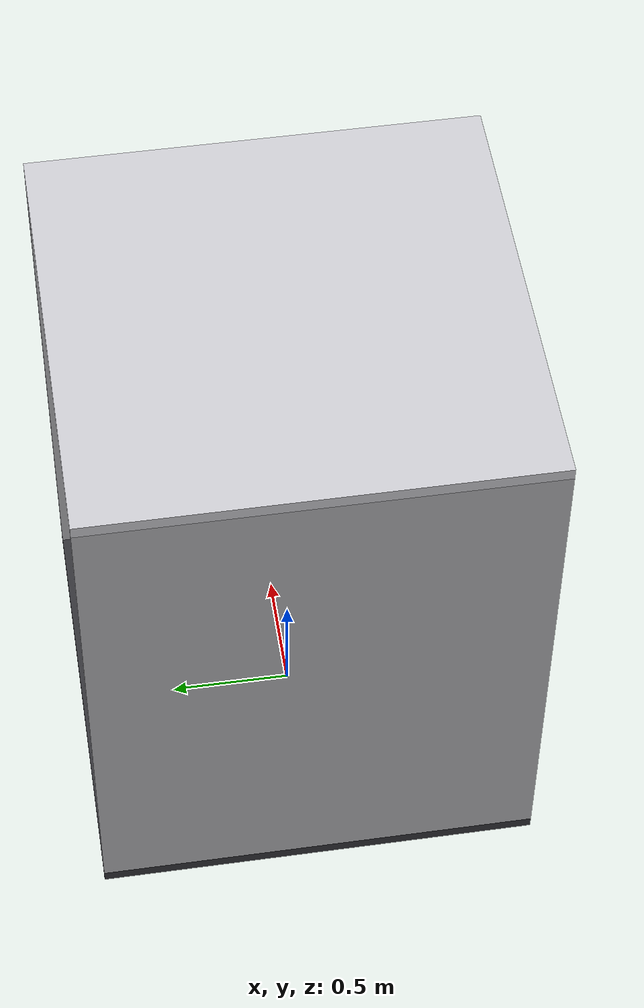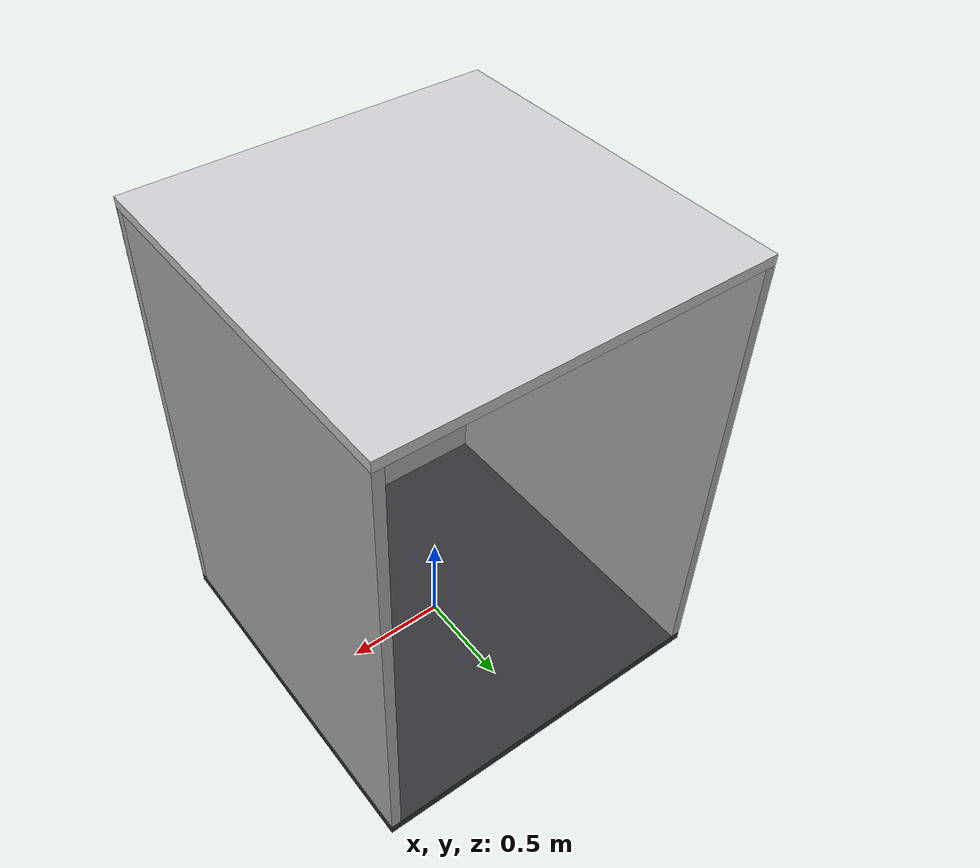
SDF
<?xml version="1.0" ?>
<sdf version="1.6">
  <model name="lift_cabin">
    <static>true</static>
    <link name="link">
      <pose>0 0 0 0 0 0</pose>
      <!-- Floor Slab -->
      <collision name="floor_collision">
        <pose>0 0 0.025 0 0 0</pose>
        <geometry><box><size>1.8 1.8 0.05</size></box></geometry>
      </collision>
      <visual name="floor_visual">
        <pose>0 0 0.025 0 0 0</pose>
        <geometry><box><size>1.8 1.8 0.05</size></box></geometry>
        <material>
          <ambient>0.2 0.2 0.22 1</ambient>
          <diffuse>0.2 0.2 0.22 1</diffuse>
        </material>
      </visual>
      <!-- Left Wall -->
      <collision name="left_wall_collision">
        <pose>-0.875 0 1.2 0 0 0</pose>
        <geometry><box><size>0.05 1.8 2.3</size></box></geometry>
      </collision>
      <visual name="left_wall_visual">
        <pose>-0.875 0 1.2 0 0 0</pose>
        <geometry><box><size>0.05 1.8 2.3</size></box></geometry>
        <material>
          <ambient>0.7 0.7 0.72 1</ambient>
          <diffuse>0.7 0.7 0.72 1</diffuse>
          <specular>0.7 0.7 0.72 1</specular>
        </material>
      </visual>
      <!-- Right Wall -->
      <collision name="right_wall_collision">
        <pose>0.875 0 1.2 0 0 0</pose>
        <geometry><box><size>0.05 1.8 2.3</size></box></geometry>
      </collision>
      <visual name="right_wall_visual">
        <pose>0.875 0 1.2 0 0 0</pose>
        <geometry><box><size>0.05 1.8 2.3</size></box></geometry>
        <material>
          <ambient>0.7 0.7 0.72 1</ambient>
          <diffuse>0.7 0.7 0.72 1</diffuse>
          <specular>0.7 0.7 0.72 1</specular>
        </material>
      </visual>
      <!-- Back Wall -->
      <collision name="back_wall_collision">
        <pose>0 -0.875 1.2 0 0 0</pose>
        <geometry><box><size>1.8 0.05 2.3</size></box></geometry>
      </collision>
      <visual name="back_wall_visual">
        <pose>0 -0.875 1.2 0 0 0</pose>
        <geometry><box><size>1.8 0.05 2.3</size></box></geometry>
        <material>
          <ambient>0.7 0.7 0.72 1</ambient>
          <diffuse>0.7 0.7 0.72 1</diffuse>
          <specular>0.7 0.7 0.72 1</specular>
        </material>
      </visual>
      <!-- Roof -->
      <collision name="roof_collision">
        <pose>0 0 2.375 0 0 0</pose>
        <geometry><box><size>1.8 1.8 0.05</size></box></geometry>
      </collision>
      <visual name="roof_visual">
        <pose>0 0 2.375 0 0 0</pose>
        <geometry><box><size>1.8 1.8 0.05</size></box></geometry>
        <material>
          <ambient>0.8 0.8 0.82 1</ambient>
          <diffuse>0.8 0.8 0.82 1</diffuse>
        </material>
      </visual>
      <!-- Small interior ceiling panel light -->
      <visual name="light_panel">
        <pose>0 0 2.34 0 0 0</pose>
        <geometry><box><size>0.5 0.5 0.02</size></box></geometry>
        <material>
          <ambient>1.0 1.0 1.0 1</ambient>
          <diffuse>1.0 1.0 1.0 1</diffuse>
          <emissive>1.0 1.0 1.0 1</emissive>
        </material>
      </visual>
    </link>
  </model>
</sdf>
